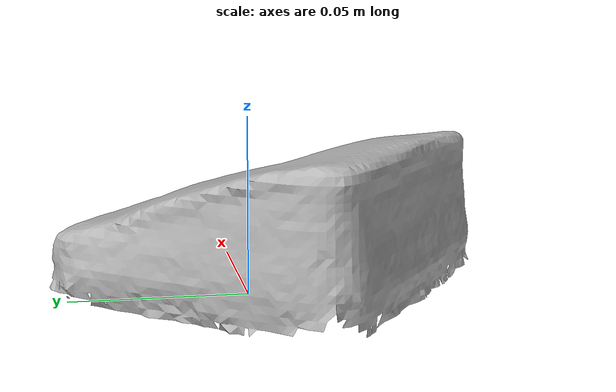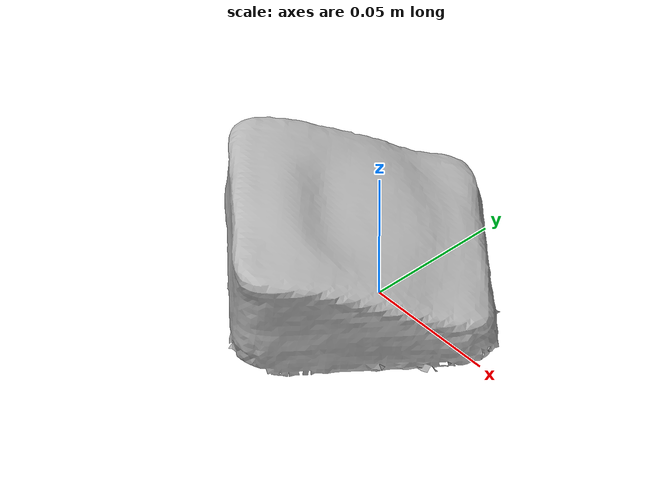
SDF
<?xml version='1.0'?>
<sdf version="1.4">
  <model name="timer">
    <static>false</static>
    <link name="link">
      <inertial>
        <pose>-0.008380210128086773 -0.01007806111086999 0.02309571069525015 -1.4859662786002932 -1.4306219623776588 0.8011890136695213</pose>
        <mass>0.00022408566973574842</mass>
        <inertia>
          <ixx>2.7428124558013425e-07</ixx>
          <ixy>-2.0651294959395484e-23</ixy>
          <ixz>2.4408636360591824e-23</ixz>
          <iyy>1.595269665450606e-07</iyy>
          <iyz>2.3933372136375442e-23</iyz>
          <izz>1.345337637709677e-07</izz>
        </inertia>
      </inertial>
      <collision name="collision">
        <geometry>
          <mesh>
            <!-- Use a downsampled mesh for collisions -->
            <uri>model://076_timer/downsampled.obj</uri>
	        </mesh>
        </geometry>
        <surface>
          <friction>
            <ode>
              <mu>80</mu>
              <mu2>60</mu2>
              <kp>100</kp>
              <kd>100</kd>
            </ode>
          </friction>
        </surface>
      </collision>
      <visual name="visual">
        <geometry>
          <mesh>
            <uri>model://076_timer/tsdf/textured.obj</uri>
	        </mesh>
        </geometry>
        <material>
          <script>
            <uri>model://076_timer/timer.material</uri>
            <name>timer</name>
          </script>
        </material>
      </visual>
    </link>
  </model>
</sdf>
